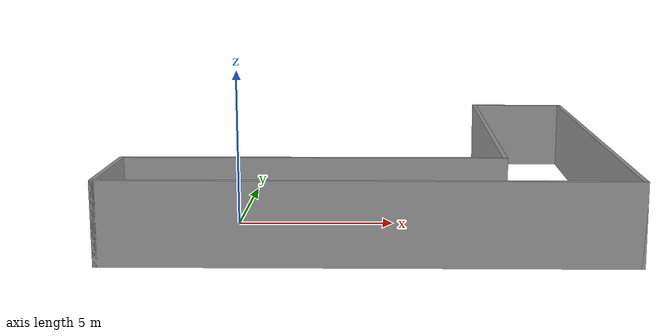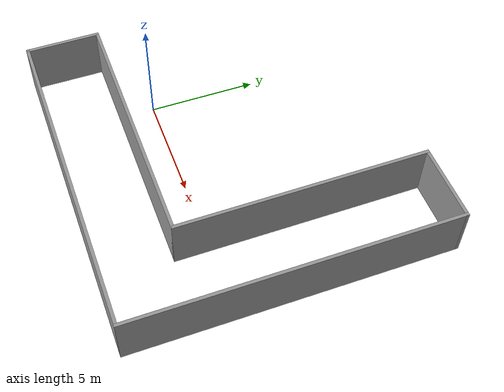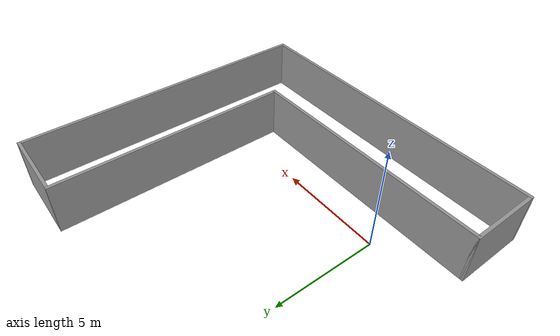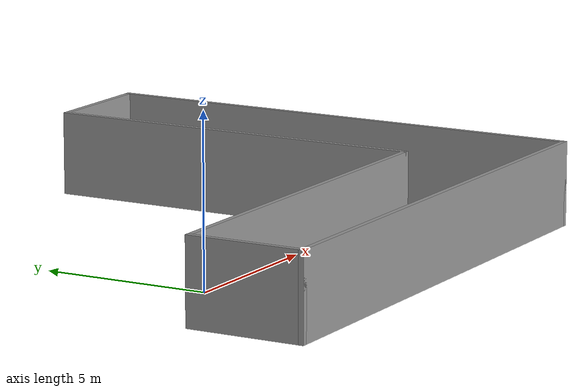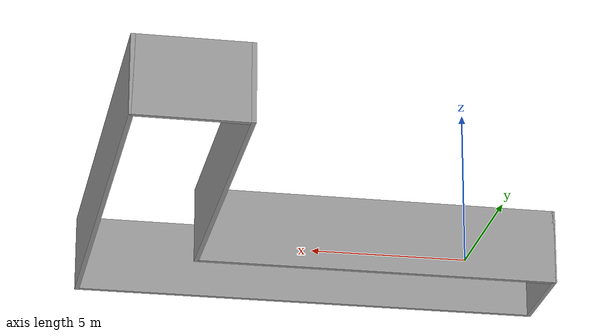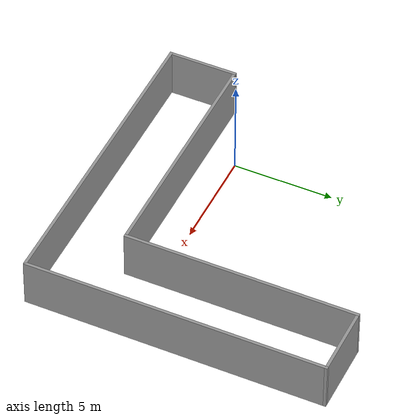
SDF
<?xml version='1.0'?>
<sdf version='1.6'>
  <model name='l_passage'>
    <pose frame=''>4.295 2.485 0 0 -0 0</pose>
    <link name='Wall_0'>
      <collision name='Wall_0_Collision'>
        <geometry>
          <box>
            <size>15.5 0.15 2.5</size>
          </box>
        </geometry>
        <pose frame=''>0 0 1.25 0 -0 0</pose>
      </collision>
      <visual name='Wall_0_Visual'>
        <pose frame=''>0 0 1.25 0 -0 0</pose>
        <geometry>
          <box>
            <size>15.5 0.15 2.5</size>
          </box>
        </geometry>
        <material>
          <script>
            <uri>file://media/materials/scripts/gazebo.material</uri>
            <name>Gazebo/Grey</name>
          </script>
          <ambient>1 1 1 1</ambient>
        </material>
        <meta>
          <layer>0</layer>
        </meta>
      </visual>
      <pose frame=''>-0 -7.425 0 0 -0 0</pose>
    </link>
    <link name='Wall_11'>
      <collision name='Wall_11_Collision'>
        <geometry>
          <box>
            <size>11.65 0.15 2.5</size>
          </box>
        </geometry>
        <pose frame=''>0 0 1.25 0 -0 0</pose>
      </collision>
      <visual name='Wall_11_Visual'>
        <pose frame=''>0 0 1.25 0 -0 0</pose>
        <geometry>
          <box>
            <size>11.65 0.15 2.5</size>
          </box>
        </geometry>
        <material>
          <script>
            <uri>file://media/materials/scripts/gazebo.material</uri>
            <name>Gazebo/Grey</name>
          </script>
          <ambient>1 1 1 1</ambient>
        </material>
        <meta>
          <layer>0</layer>
        </meta>
      </visual>
      <pose frame=''>4.175 1.675 0 0 -0 1.5708</pose>
    </link>
    <link name='Wall_13'>
      <collision name='Wall_13_Collision'>
        <geometry>
          <box>
            <size>3.5 0.15 2.5</size>
          </box>
        </geometry>
        <pose frame=''>0 0 1.25 0 -0 0</pose>
      </collision>
      <visual name='Wall_13_Visual'>
        <pose frame=''>0 0 1.25 0 -0 0</pose>
        <geometry>
          <box>
            <size>3.5 0.15 2.5</size>
          </box>
        </geometry>
        <material>
          <script>
            <uri>file://media/materials/scripts/gazebo.material</uri>
            <name>Gazebo/Grey</name>
          </script>
          <ambient>1 1 1 1</ambient>
        </material>
        <meta>
          <layer>0</layer>
        </meta>
      </visual>
      <pose frame=''>6 7.425 0 0 -0 3.14159</pose>
    </link>
    <link name='Wall_2'>
      <collision name='Wall_2_Collision'>
        <geometry>
          <box>
            <size>3.5 0.15 2.5</size>
          </box>
        </geometry>
        <pose frame=''>0 0 1.25 0 -0 0</pose>
      </collision>
      <visual name='Wall_2_Visual'>
        <pose frame=''>0 0 1.25 0 -0 0</pose>
        <geometry>
          <box>
            <size>3.5 0.15 2.5</size>
          </box>
        </geometry>
        <material>
          <script>
            <uri>file://media/materials/scripts/gazebo.material</uri>
            <name>Gazebo/Grey</name>
          </script>
          <ambient>1 1 1 1</ambient>
        </material>
        <meta>
          <layer>0</layer>
        </meta>
      </visual>
      <pose frame=''>-7.675 -5.75 0 0 -0 1.5708</pose>
    </link>
    <link name='Wall_4'>
      <collision name='Wall_4_Collision'>
        <geometry>
          <box>
            <size>12 0.15 2.5</size>
          </box>
        </geometry>
        <pose frame=''>0 0 1.25 0 -0 0</pose>
      </collision>
      <visual name='Wall_4_Visual'>
        <pose frame=''>0 0 1.25 0 -0 0</pose>
        <geometry>
          <box>
            <size>12 0.15 2.5</size>
          </box>
        </geometry>
        <material>
          <script>
            <uri>file://media/materials/scripts/gazebo.material</uri>
            <name>Gazebo/Grey</name>
          </script>
          <ambient>1 1 1 1</ambient>
        </material>
        <meta>
          <layer>0</layer>
        </meta>
      </visual>
      <pose frame=''>-1.75 -4.075 0 0 -0 0</pose>
    </link>
    <link name='Wall_9'>
      <collision name='Wall_9_Collision'>
        <geometry>
          <box>
            <size>15 0.15 2.5</size>
          </box>
        </geometry>
        <pose frame=''>0 0 1.25 0 -0 0</pose>
      </collision>
      <visual name='Wall_9_Visual'>
        <pose frame=''>0 0 1.25 0 -0 0</pose>
        <geometry>
          <box>
            <size>15 0.15 2.5</size>
          </box>
        </geometry>
        <material>
          <script>
            <uri>file://media/materials/scripts/gazebo.material</uri>
            <name>Gazebo/Grey</name>
          </script>
          <ambient>1 1 1 1</ambient>
        </material>
        <meta>
          <layer>0</layer>
        </meta>
      </visual>
      <pose frame=''>7.675 0 0 0 -0 1.5708</pose>
    </link>
    <static>1</static>
  </model>
</sdf>
